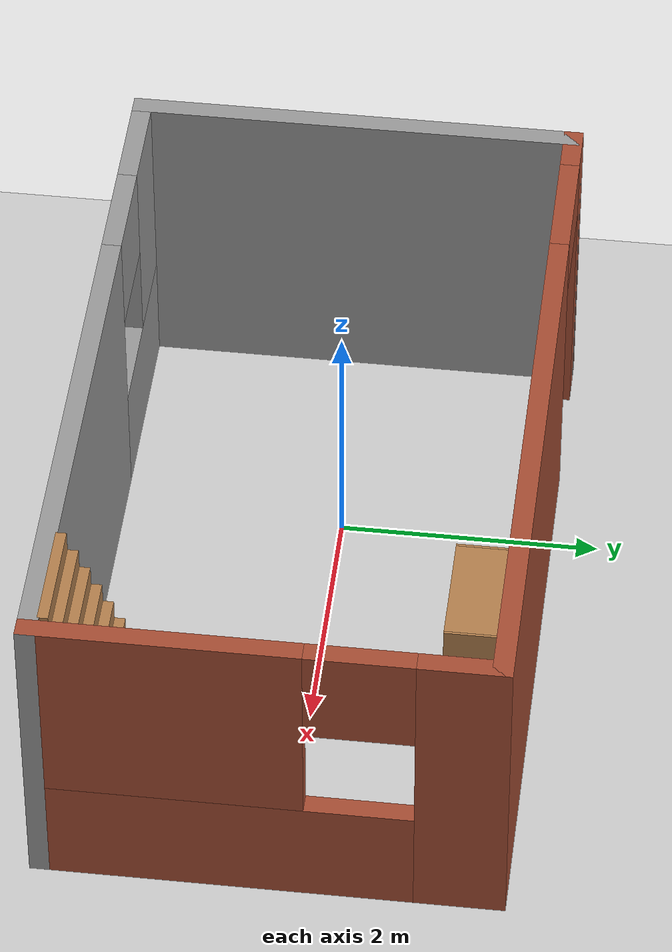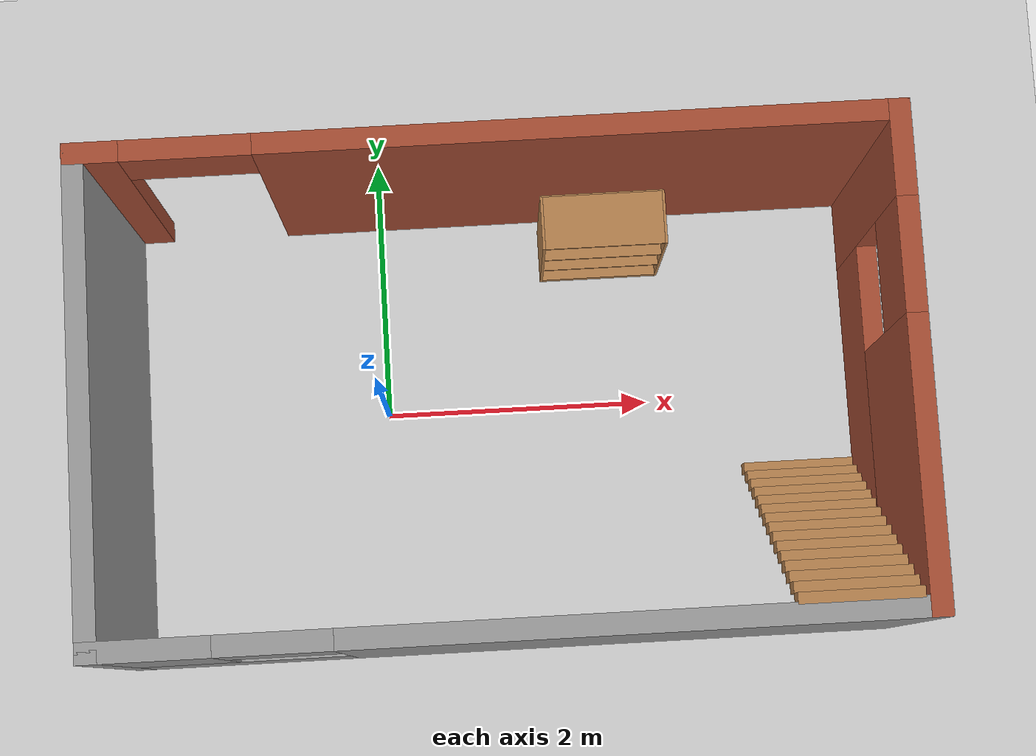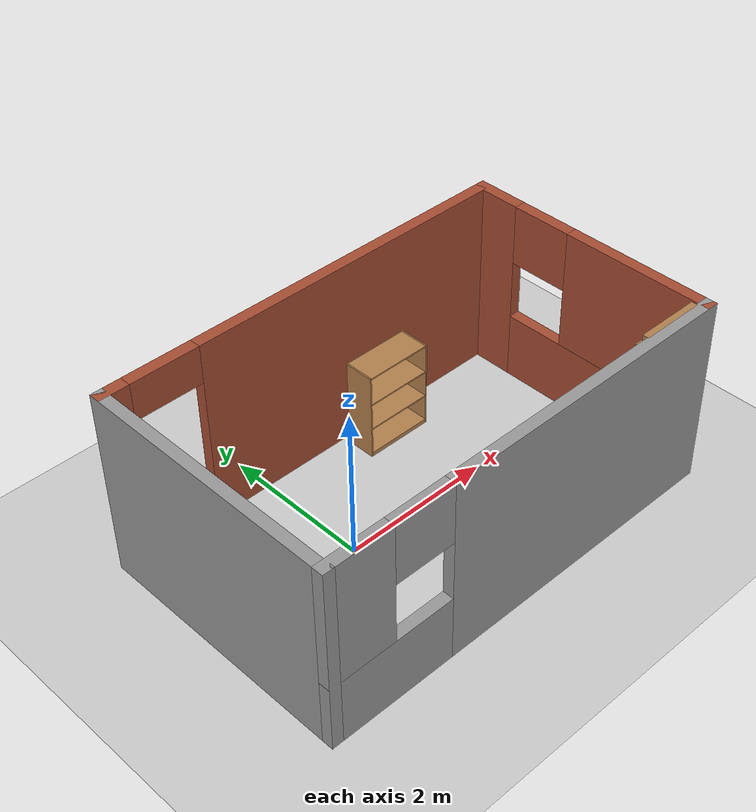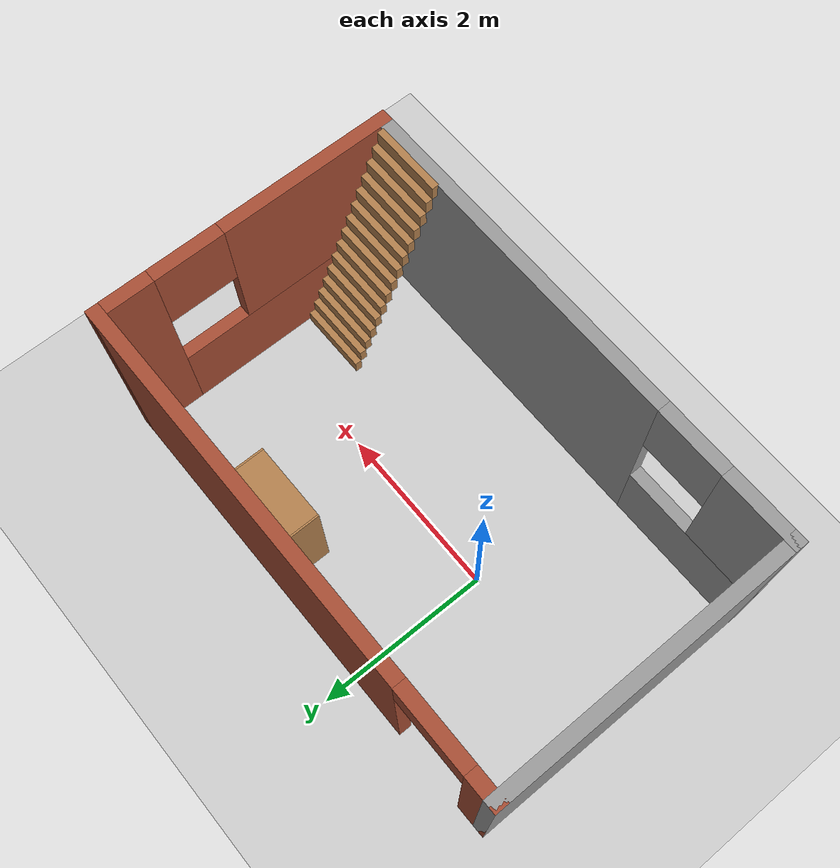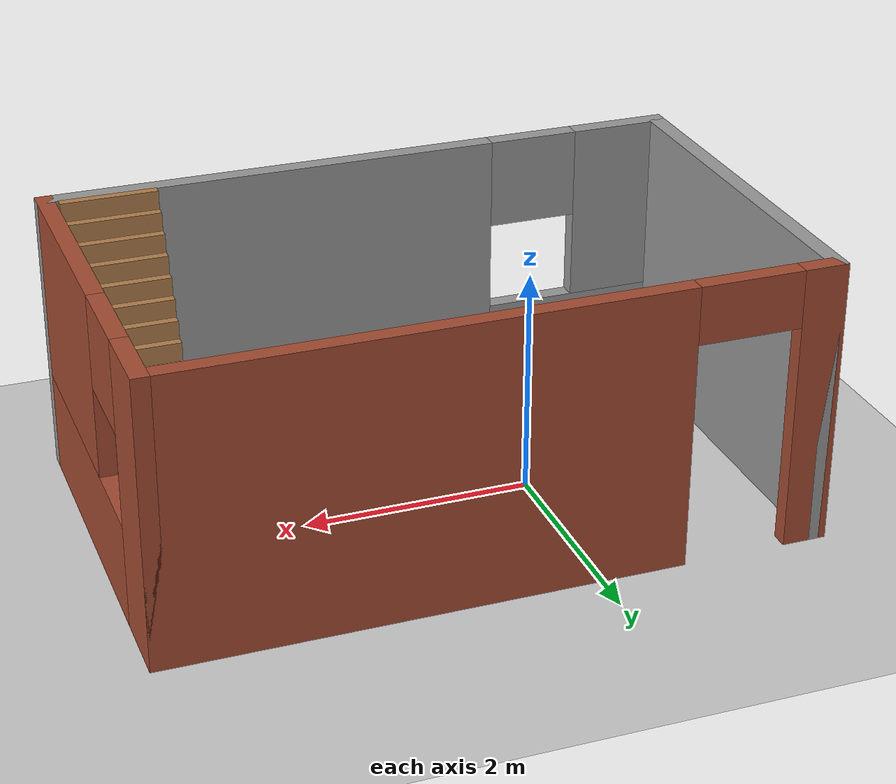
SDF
<sdf version="1.6">
 <world name="default">
  <light name="sun" type="directional">
   <pose>0 0 15 0 -0 0</pose>
   <diffuse>1 1 1 1</diffuse>
   <specular>0.1 0.1 0.1 1</specular>
   <attenuation>
    <range>1000</range>
    <constant>0.9</constant>
    <linear>0.01</linear>
    <quadratic>0.001</quadratic>
   </attenuation>
   <direction>-0.5 0.5 -1</direction>
  </light>
  <model name="ground_plane">
   <static>1</static>
   <link name="link">
    <collision name="collision">
     <geometry><plane><normal>0 0 1</normal><size>100 100</size></plane></geometry>
     <surface><friction><ode><mu>100</mu><mu2>50</mu2></ode></friction></surface>
    </collision>
    <visual name="visual">
     <transparency>1</transparency>
     <cast_shadows>0</cast_shadows>
     <geometry><plane><normal>0 0 1</normal><size>100 100</size></plane></geometry>
     <material>
      <script><uri>file://media/materials/scripts/gazebo.material</uri><name>Gazebo/Grey</name></script>
     </material>
    </visual>
   </link>
  </model>
  <gravity>0 0 -9.8</gravity>
  <magnetic_field>6e-06 2.3e-05 -4.2e-05</magnetic_field>
  <atmosphere type="adiabatic"/>
  <physics name="default_physics" default="0" type="ode">
   <max_step_size>0.001</max_step_size>
   <real_time_factor>1</real_time_factor>
   <real_time_update_rate>1000</real_time_update_rate>
  </physics>
  <scene><ambient>0.4 0.4 0.4 1</ambient><background>0.7 0.7 0.7 1</background><shadows>1</shadows></scene>
  <spherical_coordinates>
   <surface_model>EARTH_WGS84</surface_model>
   <latitude_deg>0</latitude_deg>
   <longitude_deg>0</longitude_deg>
   <elevation>0</elevation>
   <heading_deg>0</heading_deg>
  </spherical_coordinates>
  <model name="house1">
   <pose>0.854181 -0.110031 0 0 -0 0</pose>
   <link name="Stairs_0">
    <visual name="Stairs_0_Visual_0">
     <pose>2.28 -0.464667 0.083333 0 -0 0</pose>
     <geometry><box><size>0.84 0.079333 0.166667</size></box></geometry>
     <material>
      <script><uri>file://media/materials/scripts/gazebo.material</uri><name>Gazebo/Wood</name></script>
      <ambient>1 1 1 1</ambient>
     </material>
     <meta><layer>0</layer></meta>
    </visual>
    <collision name="Stairs_0_Collision_0">
     <geometry><box><size>0.84 0.079333 0.166667</size></box></geometry>
     <pose>2.28 -0.464667 0.083333 0 -0 0</pose>
    </collision>
    <visual name="Stairs_0_Visual_1">
     <pose>2.28 -0.544 0.25 0 -0 0</pose>
     <geometry><box><size>0.84 0.079333 0.166667</size></box></geometry>
     <material>
      <script><uri>file://media/materials/scripts/gazebo.material</uri><name>Gazebo/Wood</name></script>
      <ambient>1 1 1 1</ambient>
     </material>
     <meta><layer>0</layer></meta>
    </visual>
    <collision name="Stairs_0_Collision_1">
     <geometry><box><size>0.84 0.079333 0.166667</size></box></geometry>
     <pose>2.28 -0.544 0.25 0 -0 0</pose>
    </collision>
    <visual name="Stairs_0_Visual_2">
     <pose>2.28 -0.623333 0.416667 0 -0 0</pose>
     <geometry><box><size>0.84 0.079333 0.166667</size></box></geometry>
     <material>
      <script><uri>file://media/materials/scripts/gazebo.material</uri><name>Gazebo/Wood</name></script>
      <ambient>1 1 1 1</ambient>
     </material>
     <meta><layer>0</layer></meta>
    </visual>
    <collision name="Stairs_0_Collision_2">
     <geometry><box><size>0.84 0.079333 0.166667</size></box></geometry>
     <pose>2.28 -0.623333 0.416667 0 -0 0</pose>
    </collision>
    <visual name="Stairs_0_Visual_3">
     <pose>2.28 -0.702667 0.583333 0 -0 0</pose>
     <geometry><box><size>0.84 0.079333 0.166667</size></box></geometry>
     <material>
      <script><uri>file://media/materials/scripts/gazebo.material</uri><name>Gazebo/Wood</name></script>
      <ambient>1 1 1 1</ambient>
     </material>
     <meta><layer>0</layer></meta>
    </visual>
    <collision name="Stairs_0_Collision_3">
     <geometry><box><size>0.84 0.079333 0.166667</size></box></geometry>
     <pose>2.28 -0.702667 0.583333 0 -0 0</pose>
    </collision>
    <visual name="Stairs_0_Visual_4">
     <pose>2.28 -0.782 0.75 0 -0 0</pose>
     <geometry><box><size>0.84 0.079333 0.166667</size></box></geometry>
     <material>
      <script><uri>file://media/materials/scripts/gazebo.material</uri><name>Gazebo/Wood</name></script>
      <ambient>1 1 1 1</ambient>
     </material>
     <meta><layer>0</layer></meta>
    </visual>
    <collision name="Stairs_0_Collision_4">
     <geometry><box><size>0.84 0.079333 0.166667</size></box></geometry>
     <pose>2.28 -0.782 0.75 0 -0 0</pose>
    </collision>
    <visual name="Stairs_0_Visual_5">
     <pose>2.28 -0.861333 0.916667 0 -0 0</pose>
     <geometry><box><size>0.84 0.079333 0.166667</size></box></geometry>
     <material>
      <script><uri>file://media/materials/scripts/gazebo.material</uri><name>Gazebo/Wood</name></script>
      <ambient>1 1 1 1</ambient>
     </material>
     <meta><layer>0</layer></meta>
    </visual>
    <collision name="Stairs_0_Collision_5">
     <geometry><box><size>0.84 0.079333 0.166667</size></box></geometry>
     <pose>2.28 -0.861333 0.916667 0 -0 0</pose>
    </collision>
    <visual name="Stairs_0_Visual_6">
     <pose>2.28 -0.940667 1.08333 0 -0 0</pose>
     <geometry><box><size>0.84 0.079333 0.166667</size></box></geometry>
     <material>
      <script><uri>file://media/materials/scripts/gazebo.material</uri><name>Gazebo/Wood</name></script>
      <ambient>1 1 1 1</ambient>
     </material>
     <meta><layer>0</layer></meta>
    </visual>
    <collision name="Stairs_0_Collision_6">
     <geometry><box><size>0.84 0.079333 0.166667</size></box></geometry>
     <pose>2.28 -0.940667 1.08333 0 -0 0</pose>
    </collision>
    <visual name="Stairs_0_Visual_7">
     <pose>2.28 -1.02 1.25 0 -0 0</pose>
     <geometry><box><size>0.84 0.079333 0.166667</size></box></geometry>
     <material>
      <script><uri>file://media/materials/scripts/gazebo.material</uri><name>Gazebo/Wood</name></script>
      <ambient>1 1 1 1</ambient>
     </material>
     <meta><layer>0</layer></meta>
    </visual>
    <collision name="Stairs_0_Collision_7">
     <geometry><box><size>0.84 0.079333 0.166667</size></box></geometry>
     <pose>2.28 -1.02 1.25 0 -0 0</pose>
    </collision>
    <visual name="Stairs_0_Visual_8">
     <pose>2.28 -1.09933 1.41667 0 -0 0</pose>
     <geometry><box><size>0.84 0.079333 0.166667</size></box></geometry>
     <material>
      <script><uri>file://media/materials/scripts/gazebo.material</uri><name>Gazebo/Wood</name></script>
      <ambient>1 1 1 1</ambient>
     </material>
     <meta><layer>0</layer></meta>
    </visual>
    <collision name="Stairs_0_Collision_8">
     <geometry><box><size>0.84 0.079333 0.166667</size></box></geometry>
     <pose>2.28 -1.09933 1.41667 0 -0 0</pose>
    </collision>
    <visual name="Stairs_0_Visual_9">
     <pose>2.28 -1.17867 1.58333 0 -0 0</pose>
     <geometry><box><size>0.84 0.079333 0.166667</size></box></geometry>
     <material>
      <script><uri>file://media/materials/scripts/gazebo.material</uri><name>Gazebo/Wood</name></script>
      <ambient>1 1 1 1</ambient>
     </material>
     <meta><layer>0</layer></meta>
    </visual>
    <collision name="Stairs_0_Collision_9">
     <geometry><box><size>0.84 0.079333 0.166667</size></box></geometry>
     <pose>2.28 -1.17867 1.58333 0 -0 0</pose>
    </collision>
    <visual name="Stairs_0_Visual_10">
     <pose>2.28 -1.258 1.75 0 -0 0</pose>
     <geometry><box><size>0.84 0.079333 0.166667</size></box></geometry>
     <material>
      <script><uri>file://media/materials/scripts/gazebo.material</uri><name>Gazebo/Wood</name></script>
      <ambient>1 1 1 1</ambient>
     </material>
     <meta><layer>0</layer></meta>
    </visual>
    <collision name="Stairs_0_Collision_10">
     <geometry><box><size>0.84 0.079333 0.166667</size></box></geometry>
     <pose>2.28 -1.258 1.75 0 -0 0</pose>
    </collision>
    <visual name="Stairs_0_Visual_11">
     <pose>2.28 -1.33733 1.91667 0 -0 0</pose>
     <geometry><box><size>0.84 0.079333 0.166667</size></box></geometry>
     <material>
      <script><uri>file://media/materials/scripts/gazebo.material</uri><name>Gazebo/Wood</name></script>
      <ambient>1 1 1 1</ambient>
     </material>
     <meta><layer>0</layer></meta>
    </visual>
    <collision name="Stairs_0_Collision_11">
     <geometry><box><size>0.84 0.079333 0.166667</size></box></geometry>
     <pose>2.28 -1.33733 1.91667 0 -0 0</pose>
    </collision>
    <visual name="Stairs_0_Visual_12">
     <pose>2.28 -1.41667 2.08333 0 -0 0</pose>
     <geometry><box><size>0.84 0.079333 0.166667</size></box></geometry>
     <material>
      <script><uri>file://media/materials/scripts/gazebo.material</uri><name>Gazebo/Wood</name></script>
      <ambient>1 1 1 1</ambient>
     </material>
     <meta><layer>0</layer></meta>
    </visual>
    <collision name="Stairs_0_Collision_12">
     <geometry><box><size>0.84 0.079333 0.166667</size></box></geometry>
     <pose>2.28 -1.41667 2.08333 0 -0 0</pose>
    </collision>
    <visual name="Stairs_0_Visual_13">
     <pose>2.28 -1.496 2.25 0 -0 0</pose>
     <geometry><box><size>0.84 0.079333 0.166667</size></box></geometry>
     <material>
      <script><uri>file://media/materials/scripts/gazebo.material</uri><name>Gazebo/Wood</name></script>
      <ambient>1 1 1 1</ambient>
     </material>
     <meta><layer>0</layer></meta>
    </visual>
    <collision name="Stairs_0_Collision_13">
     <geometry><box><size>0.84 0.079333 0.166667</size></box></geometry>
     <pose>2.28 -1.496 2.25 0 -0 0</pose>
    </collision>
    <visual name="Stairs_0_Visual_14">
     <pose>2.28 -1.57533 2.41667 0 -0 0</pose>
     <geometry><box><size>0.84 0.079333 0.166667</size></box></geometry>
     <material>
      <script><uri>file://media/materials/scripts/gazebo.material</uri><name>Gazebo/Wood</name></script>
      <ambient>1 1 1 1</ambient>
     </material>
     <meta><layer>0</layer></meta>
    </visual>
    <collision name="Stairs_0_Collision_14">
     <geometry><box><size>0.84 0.079333 0.166667</size></box></geometry>
     <pose>2.28 -1.57533 2.41667 0 -0 0</pose>
    </collision>
   </link>
   <link name="Wall_21">
    <pose>0 1.675 0 0 -0 0</pose>
    <visual name="Wall_21_Visual_0">
     <pose>-2.6825 0 1.25 0 -0 0</pose>
     <geometry><box><size>0.385 0.15 2.5</size></box></geometry>
     <material>
      <script><uri>file://media/materials/scripts/gazebo.material</uri><name>Gazebo/Bricks</name></script>
      <ambient>1 1 1 1</ambient>
     </material>
     <meta><layer>0</layer></meta>
    </visual>
    <collision name="Wall_21_Collision_0">
     <geometry><box><size>0.385 0.15 2.5</size></box></geometry>
     <pose>-2.6825 0 1.25 0 -0 0</pose>
    </collision>
    <visual name="Wall_21_Visual_1">
     <pose>0.6425 0 1.25 0 -0 0</pose>
     <geometry><box><size>4.465 0.15 2.5</size></box></geometry>
     <material>
      <script><uri>file://media/materials/scripts/gazebo.material</uri><name>Gazebo/Bricks</name></script>
      <ambient>1 1 1 1</ambient>
     </material>
     <meta><layer>0</layer></meta>
    </visual>
    <collision name="Wall_21_Collision_1">
     <geometry><box><size>4.465 0.15 2.5</size></box></geometry>
     <pose>0.6425 0 1.25 0 -0 0</pose>
    </collision>
    <visual name="Wall_21_Visual_2">
     <pose>-2.04 0 2.25 0 -0 0</pose>
     <geometry><box><size>0.9 0.15 0.5</size></box></geometry>
     <material>
      <script><uri>file://media/materials/scripts/gazebo.material</uri><name>Gazebo/Bricks</name></script>
      <ambient>1 1 1 1</ambient>
     </material>
     <meta><layer>0</layer></meta>
    </visual>
    <collision name="Wall_21_Collision_2">
     <geometry><box><size>0.9 0.15 0.5</size></box></geometry>
     <pose>-2.04 0 2.25 0 -0 0</pose>
    </collision>
   </link>
   <link name="Wall_22">
    <pose>2.8 0 0 0 0 -1.5708</pose>
    <visual name="Wall_22_Visual_0">
     <pose>-1.4125 0 1.25 0 -0 0</pose>
     <geometry><box><size>0.675 0.15 2.5</size></box></geometry>
     <material>
      <script><uri>file://media/materials/scripts/gazebo.material</uri><name>Gazebo/Bricks</name></script>
      <ambient>1 1 1 1</ambient>
     </material>
     <meta><layer>0</layer></meta>
    </visual>
    <collision name="Wall_22_Collision_0">
     <geometry><box><size>0.675 0.15 2.5</size></box></geometry>
     <pose>-1.4125 0 1.25 0 -0 0</pose>
    </collision>
    <visual name="Wall_22_Visual_1">
     <pose>0.3375 0 0.45 0 -0 0</pose>
     <geometry><box><size>2.825 0.15 0.9</size></box></geometry>
     <material>
      <script><uri>file://media/materials/scripts/gazebo.material</uri><name>Gazebo/Bricks</name></script>
      <ambient>1 1 1 1</ambient>
     </material>
     <meta><layer>0</layer></meta>
    </visual>
    <collision name="Wall_22_Collision_1">
     <geometry><box><size>2.825 0.15 0.9</size></box></geometry>
     <pose>0.3375 0 0.45 0 -0 0</pose>
    </collision>
    <visual name="Wall_22_Visual_2">
     <pose>0.7375 0 1.7 0 -0 0</pose>
     <geometry><box><size>2.025 0.15 1.6</size></box></geometry>
     <material>
      <script><uri>file://media/materials/scripts/gazebo.material</uri><name>Gazebo/Bricks</name></script>
      <ambient>1 1 1 1</ambient>
     </material>
     <meta><layer>0</layer></meta>
    </visual>
    <collision name="Wall_22_Collision_2">
     <geometry><box><size>2.025 0.15 1.6</size></box></geometry>
     <pose>0.7375 0 1.7 0 -0 0</pose>
    </collision>
    <visual name="Wall_22_Visual_3">
     <pose>-0.675 0 2.1 0 -0 0</pose>
     <geometry><box><size>0.8 0.15 0.8</size></box></geometry>
     <material>
      <script><uri>file://media/materials/scripts/gazebo.material</uri><name>Gazebo/Bricks</name></script>
      <ambient>1 1 1 1</ambient>
     </material>
     <meta><layer>0</layer></meta>
    </visual>
    <collision name="Wall_22_Collision_3">
     <geometry><box><size>0.8 0.15 0.8</size></box></geometry>
     <pose>-0.675 0 2.1 0 -0 0</pose>
    </collision>
   </link>
   <link name="Wall_23">
    <pose>0 -1.675 0 0 -0 3.14159</pose>
    <visual name="Wall_23_Visual_0">
     <pose>-0.8475 0 1.25 0 -0 0</pose>
     <geometry><box><size>4.055 0.15 2.5</size></box></geometry>
     <material>
      <script><uri>file://media/materials/scripts/gazebo.material</uri><name>Gazebo/Grey</name></script>
      <ambient>1 1 1 1</ambient>
     </material>
     <meta><layer>0</layer></meta>
    </visual>
    <collision name="Wall_23_Collision_0">
     <geometry><box><size>4.055 0.15 2.5</size></box></geometry>
     <pose>-0.8475 0 1.25 0 -0 0</pose>
    </collision>
    <visual name="Wall_23_Visual_1">
     <pose>2.0275 0 0.45 0 -0 0</pose>
     <geometry><box><size>1.695 0.15 0.9</size></box></geometry>
     <material>
      <script><uri>file://media/materials/scripts/gazebo.material</uri><name>Gazebo/Grey</name></script>
      <ambient>1 1 1 1</ambient>
     </material>
     <meta><layer>0</layer></meta>
    </visual>
    <collision name="Wall_23_Collision_1">
     <geometry><box><size>1.695 0.15 0.9</size></box></geometry>
     <pose>2.0275 0 0.45 0 -0 0</pose>
    </collision>
    <visual name="Wall_23_Visual_2">
     <pose>2.4275 0 1.7 0 -0 0</pose>
     <geometry><box><size>0.895 0.15 1.6</size></box></geometry>
     <material>
      <script><uri>file://media/materials/scripts/gazebo.material</uri><name>Gazebo/Grey</name></script>
      <ambient>1 1 1 1</ambient>
     </material>
     <meta><layer>0</layer></meta>
    </visual>
    <collision name="Wall_23_Collision_2">
     <geometry><box><size>0.895 0.15 1.6</size></box></geometry>
     <pose>2.4275 0 1.7 0 -0 0</pose>
    </collision>
    <visual name="Wall_23_Visual_3">
     <pose>1.58 0 2.1 0 -0 0</pose>
     <geometry><box><size>0.8 0.15 0.8</size></box></geometry>
     <material>
      <script><uri>file://media/materials/scripts/gazebo.material</uri><name>Gazebo/Grey</name></script>
      <ambient>1 1 1 1</ambient>
     </material>
     <meta><layer>0</layer></meta>
    </visual>
    <collision name="Wall_23_Collision_3">
     <geometry><box><size>0.8 0.15 0.8</size></box></geometry>
     <pose>1.58 0 2.1 0 -0 0</pose>
    </collision>
   </link>
   <link name="Wall_24">
    <collision name="Wall_24_Collision">
     <geometry><box><size>3.5 0.15 2.5</size></box></geometry>
     <pose>0 0 1.25 0 -0 0</pose>
    </collision>
    <visual name="Wall_24_Visual">
     <pose>0 0 1.25 0 -0 0</pose>
     <geometry><box><size>3.5 0.15 2.5</size></box></geometry>
     <material>
      <script><uri>file://media/materials/scripts/gazebo.material</uri><name>Gazebo/Grey</name></script>
      <ambient>1 1 1 1</ambient>
     </material>
     <meta><layer>0</layer></meta>
    </visual>
    <pose>-2.8 0 0 0 -0 1.5708</pose>
   </link>
   <static>1</static>
  </model>
  <model name="bookshelf">
   <static>1</static>
   <link name="link">
    <inertial><mass>1</mass></inertial>
    <collision name="back">
     <pose>0 0.005 0.6 0 -0 0</pose>
     <geometry><box><size>0.9 0.01 1.2</size></box></geometry>
    </collision>
    <visual name="visual1">
     <pose>0 0.005 0.6 0 -0 0</pose>
     <geometry><box><size>0.9 0.01 1.2</size></box></geometry>
     <material>
      <script><uri>file://media/materials/scripts/gazebo.material</uri><name>Gazebo/Wood</name></script>
     </material>
    </visual>
    <collision name="left_side">
     <pose>0.45 -0.195 0.6 0 -0 0</pose>
     <geometry><box><size>0.02 0.4 1.2</size></box></geometry>
    </collision>
    <visual name="visual2">
     <pose>0.45 -0.195 0.6 0 -0 0</pose>
     <geometry><box><size>0.02 0.4 1.2</size></box></geometry>
     <material>
      <script><uri>file://media/materials/scripts/gazebo.material</uri><name>Gazebo/Wood</name></script>
     </material>
    </visual>
    <collision name="right_side">
     <pose>-0.45 -0.195 0.6 0 -0 0</pose>
     <geometry><box><size>0.02 0.4 1.2</size></box></geometry>
    </collision>
    <visual name="visual3">
     <pose>-0.45 -0.195 0.6 0 -0 0</pose>
     <geometry><box><size>0.02 0.4 1.2</size></box></geometry>
     <material>
      <script><uri>file://media/materials/scripts/gazebo.material</uri><name>Gazebo/Wood</name></script>
     </material>
    </visual>
    <collision name="bottom">
     <pose>0 -0.195 0.03 0 -0 0</pose>
     <geometry><box><size>0.88 0.4 0.06</size></box></geometry>
    </collision>
    <visual name="visual4">
     <pose>0 -0.195 0.03 0 -0 0</pose>
     <geometry><box><size>0.88 0.4 0.06</size></box></geometry>
     <material>
      <script><uri>file://media/materials/scripts/gazebo.material</uri><name>Gazebo/Wood</name></script>
     </material>
    </visual>
    <collision name="top">
     <pose>0 -0.195 1.19 0 -0 0</pose>
     <geometry><box><size>0.88 0.4 0.02</size></box></geometry>
    </collision>
    <visual name="visual5">
     <pose>0 -0.195 1.19 0 -0 0</pose>
     <geometry><box><size>0.88 0.4 0.02</size></box></geometry>
     <material>
      <script><uri>file://media/materials/scripts/gazebo.material</uri><name>Gazebo/Wood</name></script>
     </material>
    </visual>
    <collision name="low_shelf">
     <pose>0 -0.195 0.43 0 -0 0</pose>
     <geometry><box><size>0.88 0.4 0.02</size></box></geometry>
    </collision>
    <visual name="visual6">
     <pose>0 -0.195 0.43 0 -0 0</pose>
     <geometry><box><size>0.88 0.4 0.02</size></box></geometry>
     <material>
      <script><uri>file://media/materials/scripts/gazebo.material</uri><name>Gazebo/Wood</name></script>
     </material>
    </visual>
    <collision name="high_shelf">
     <pose>0 -0.195 0.8 0 -0 0</pose>
     <geometry><box><size>0.88 0.4 0.02</size></box></geometry>
    </collision>
    <visual name="visual7">
     <pose>0 -0.195 0.8 0 -0 0</pose>
     <geometry><box><size>0.88 0.4 0.02</size></box></geometry>
     <material>
      <script><uri>file://media/materials/scripts/gazebo.material</uri><name>Gazebo/Wood</name></script>
     </material>
    </visual>
   </link>
   <pose>1.69086 1.40193 0 0 -0 0</pose>
  </model>
 </world>
</sdf>
